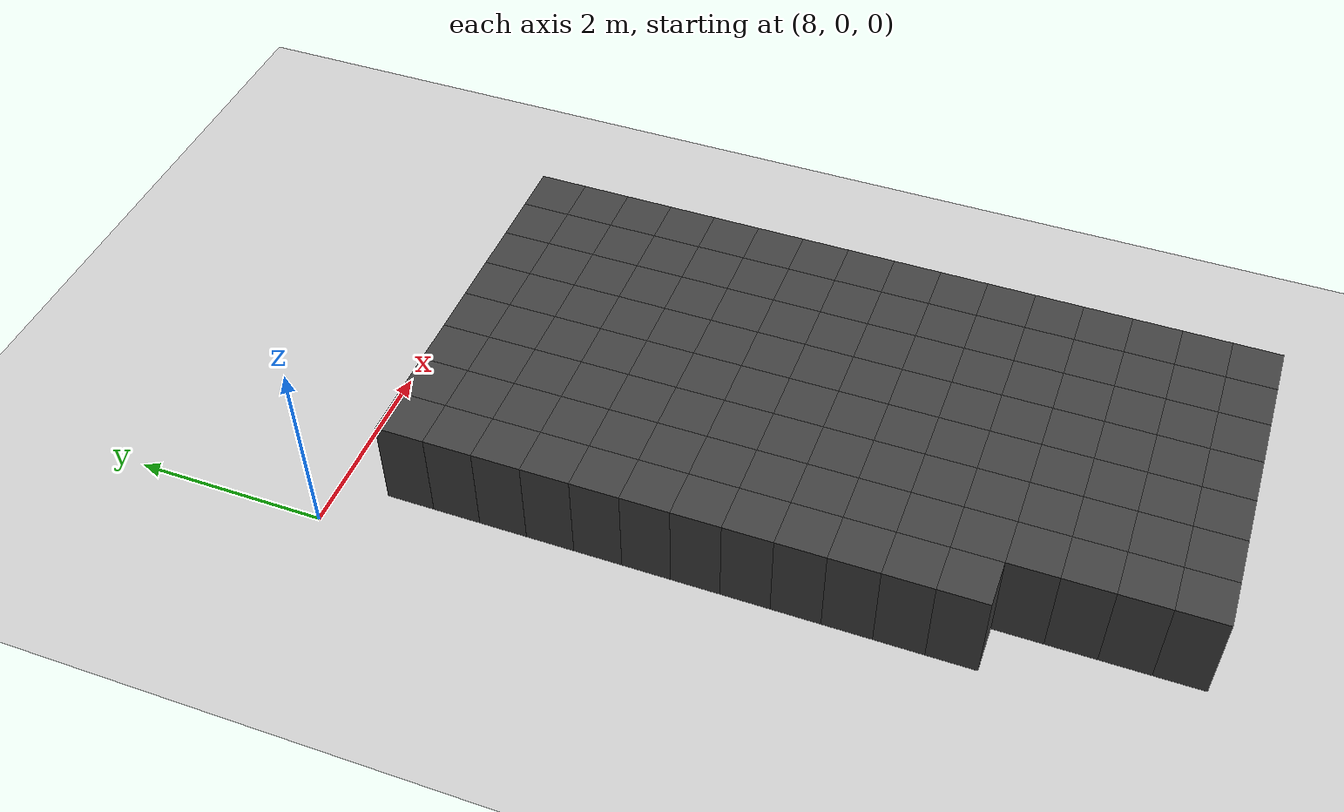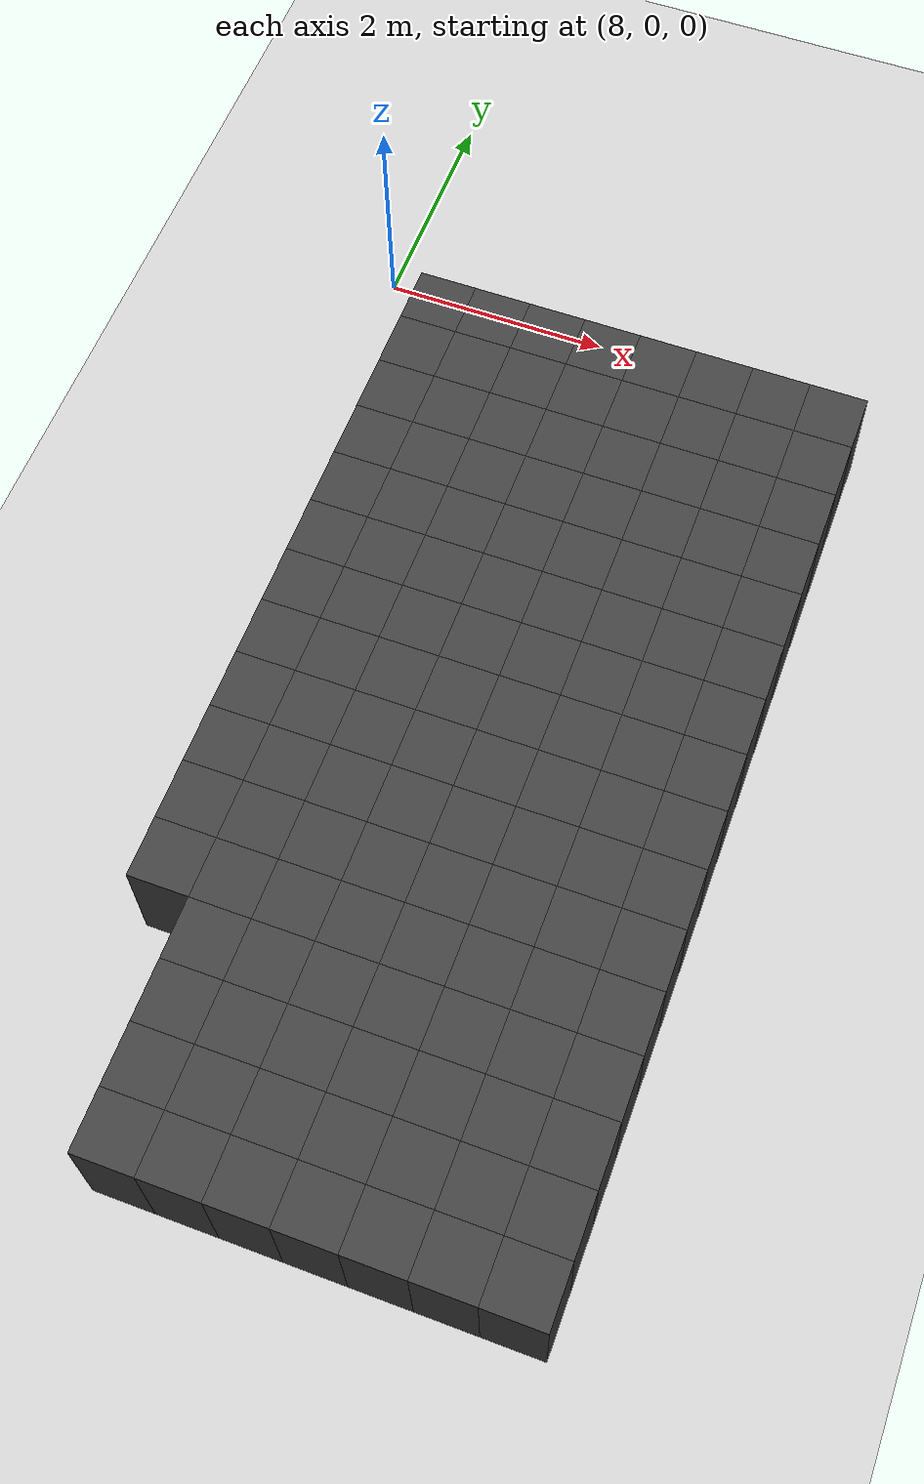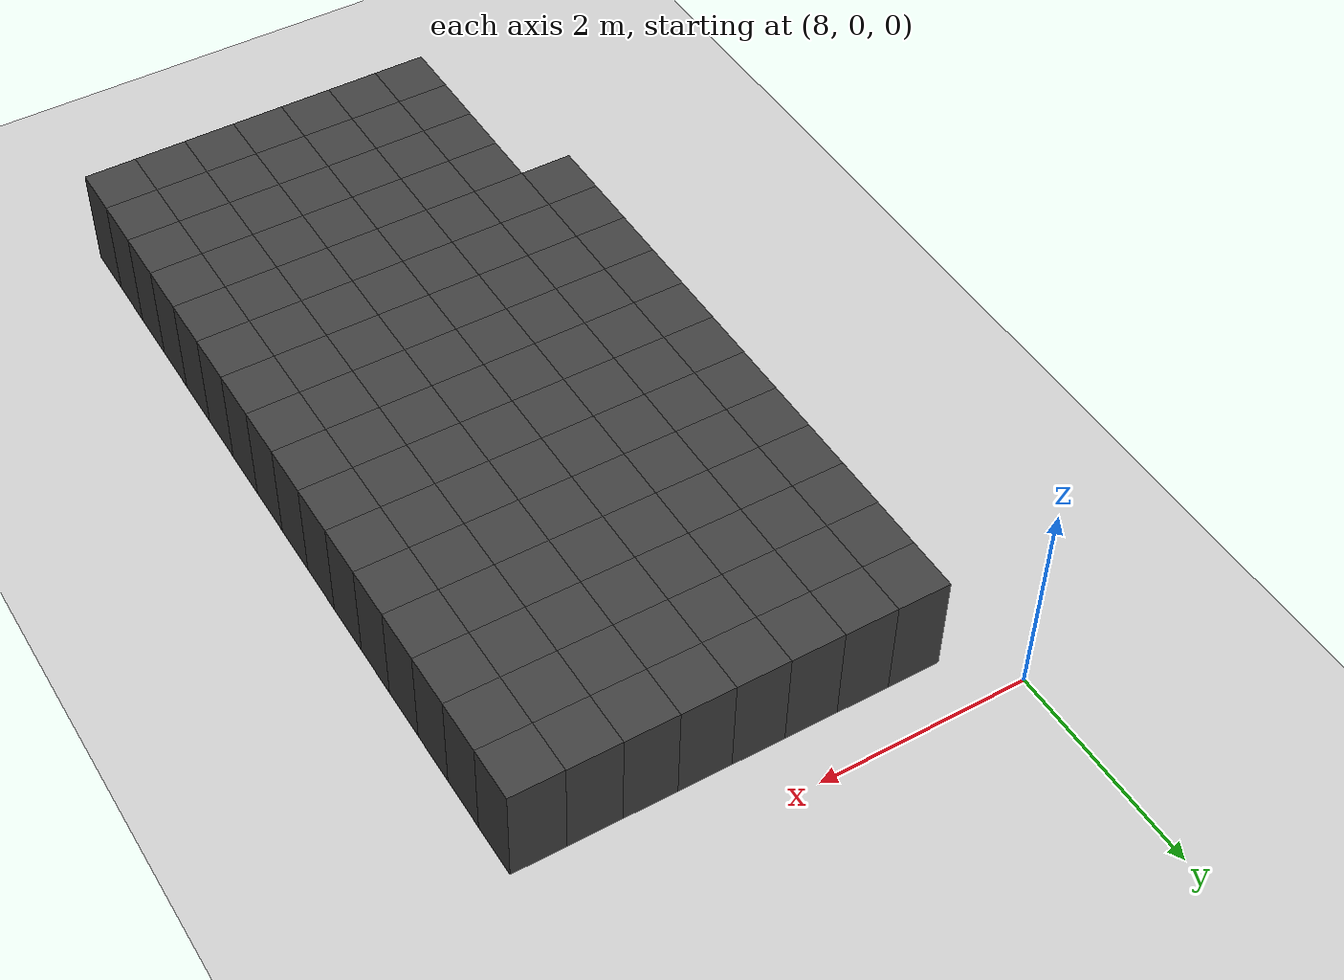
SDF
<sdf version="1.7">
 <world name="map_14668">
  <model name="ground_plane">
   <static>true</static>
   <link name="link">
    <collision name="collision">
     <geometry><plane><normal>0 0 1</normal><size>200 200</size></plane></geometry>
    </collision>
    <visual name="visual">
     <geometry><plane><normal>0 0 1</normal><size>200 200</size></plane></geometry>
     <material><ambient>0.8 0.8 0.8 1</ambient><diffuse>0.8 0.8 0.8 1</diffuse></material>
    </visual>
   </link>
  </model>
  <model name="maze_environment">
   <static>true</static>
   <link name="wall_1041">
    <pose>8.750 -0.750 0.500 0 0 0</pose>
    <collision name="col"><geometry><box><size>0.5 0.5 1.0</size></box></geometry></collision>
    <visual name="vis">
     <geometry><box><size>0.5 0.5 1.0</size></box></geometry>
     <material><ambient>0.15 0.15 0.15 1</ambient><diffuse>0.25 0.25 0.25 1</diffuse></material>
    </visual>
   </link>
   <link name="wall_1042">
    <pose>9.250 -0.750 0.500 0 0 0</pose>
    <collision name="col"><geometry><box><size>0.5 0.5 1.0</size></box></geometry></collision>
    <visual name="vis">
     <geometry><box><size>0.5 0.5 1.0</size></box></geometry>
     <material><ambient>0.15 0.15 0.15 1</ambient><diffuse>0.25 0.25 0.25 1</diffuse></material>
    </visual>
   </link>
   <link name="wall_1043">
    <pose>9.750 -0.750 0.500 0 0 0</pose>
    <collision name="col"><geometry><box><size>0.5 0.5 1.0</size></box></geometry></collision>
    <visual name="vis">
     <geometry><box><size>0.5 0.5 1.0</size></box></geometry>
     <material><ambient>0.15 0.15 0.15 1</ambient><diffuse>0.25 0.25 0.25 1</diffuse></material>
    </visual>
   </link>
   <link name="wall_1044">
    <pose>10.250 -0.750 0.500 0 0 0</pose>
    <collision name="col"><geometry><box><size>0.5 0.5 1.0</size></box></geometry></collision>
    <visual name="vis">
     <geometry><box><size>0.5 0.5 1.0</size></box></geometry>
     <material><ambient>0.15 0.15 0.15 1</ambient><diffuse>0.25 0.25 0.25 1</diffuse></material>
    </visual>
   </link>
   <link name="wall_1045">
    <pose>10.750 -0.750 0.500 0 0 0</pose>
    <collision name="col"><geometry><box><size>0.5 0.5 1.0</size></box></geometry></collision>
    <visual name="vis">
     <geometry><box><size>0.5 0.5 1.0</size></box></geometry>
     <material><ambient>0.15 0.15 0.15 1</ambient><diffuse>0.25 0.25 0.25 1</diffuse></material>
    </visual>
   </link>
   <link name="wall_1046">
    <pose>11.250 -0.750 0.500 0 0 0</pose>
    <collision name="col"><geometry><box><size>0.5 0.5 1.0</size></box></geometry></collision>
    <visual name="vis">
     <geometry><box><size>0.5 0.5 1.0</size></box></geometry>
     <material><ambient>0.15 0.15 0.15 1</ambient><diffuse>0.25 0.25 0.25 1</diffuse></material>
    </visual>
   </link>
   <link name="wall_1047">
    <pose>11.750 -0.750 0.500 0 0 0</pose>
    <collision name="col"><geometry><box><size>0.5 0.5 1.0</size></box></geometry></collision>
    <visual name="vis">
     <geometry><box><size>0.5 0.5 1.0</size></box></geometry>
     <material><ambient>0.15 0.15 0.15 1</ambient><diffuse>0.25 0.25 0.25 1</diffuse></material>
    </visual>
   </link>
   <link name="wall_1048">
    <pose>12.250 -0.750 0.500 0 0 0</pose>
    <collision name="col"><geometry><box><size>0.5 0.5 1.0</size></box></geometry></collision>
    <visual name="vis">
     <geometry><box><size>0.5 0.5 1.0</size></box></geometry>
     <material><ambient>0.15 0.15 0.15 1</ambient><diffuse>0.25 0.25 0.25 1</diffuse></material>
    </visual>
   </link>
   <link name="wall_1083">
    <pose>8.750 -1.250 0.500 0 0 0</pose>
    <collision name="col"><geometry><box><size>0.5 0.5 1.0</size></box></geometry></collision>
    <visual name="vis">
     <geometry><box><size>0.5 0.5 1.0</size></box></geometry>
     <material><ambient>0.15 0.15 0.15 1</ambient><diffuse>0.25 0.25 0.25 1</diffuse></material>
    </visual>
   </link>
   <link name="wall_1084">
    <pose>9.250 -1.250 0.500 0 0 0</pose>
    <collision name="col"><geometry><box><size>0.5 0.5 1.0</size></box></geometry></collision>
    <visual name="vis">
     <geometry><box><size>0.5 0.5 1.0</size></box></geometry>
     <material><ambient>0.15 0.15 0.15 1</ambient><diffuse>0.25 0.25 0.25 1</diffuse></material>
    </visual>
   </link>
   <link name="wall_1085">
    <pose>9.750 -1.250 0.500 0 0 0</pose>
    <collision name="col"><geometry><box><size>0.5 0.5 1.0</size></box></geometry></collision>
    <visual name="vis">
     <geometry><box><size>0.5 0.5 1.0</size></box></geometry>
     <material><ambient>0.15 0.15 0.15 1</ambient><diffuse>0.25 0.25 0.25 1</diffuse></material>
    </visual>
   </link>
   <link name="wall_1086">
    <pose>10.250 -1.250 0.500 0 0 0</pose>
    <collision name="col"><geometry><box><size>0.5 0.5 1.0</size></box></geometry></collision>
    <visual name="vis">
     <geometry><box><size>0.5 0.5 1.0</size></box></geometry>
     <material><ambient>0.15 0.15 0.15 1</ambient><diffuse>0.25 0.25 0.25 1</diffuse></material>
    </visual>
   </link>
   <link name="wall_1087">
    <pose>10.750 -1.250 0.500 0 0 0</pose>
    <collision name="col"><geometry><box><size>0.5 0.5 1.0</size></box></geometry></collision>
    <visual name="vis">
     <geometry><box><size>0.5 0.5 1.0</size></box></geometry>
     <material><ambient>0.15 0.15 0.15 1</ambient><diffuse>0.25 0.25 0.25 1</diffuse></material>
    </visual>
   </link>
   <link name="wall_1088">
    <pose>11.250 -1.250 0.500 0 0 0</pose>
    <collision name="col"><geometry><box><size>0.5 0.5 1.0</size></box></geometry></collision>
    <visual name="vis">
     <geometry><box><size>0.5 0.5 1.0</size></box></geometry>
     <material><ambient>0.15 0.15 0.15 1</ambient><diffuse>0.25 0.25 0.25 1</diffuse></material>
    </visual>
   </link>
   <link name="wall_1089">
    <pose>11.750 -1.250 0.500 0 0 0</pose>
    <collision name="col"><geometry><box><size>0.5 0.5 1.0</size></box></geometry></collision>
    <visual name="vis">
     <geometry><box><size>0.5 0.5 1.0</size></box></geometry>
     <material><ambient>0.15 0.15 0.15 1</ambient><diffuse>0.25 0.25 0.25 1</diffuse></material>
    </visual>
   </link>
   <link name="wall_1090">
    <pose>12.250 -1.250 0.500 0 0 0</pose>
    <collision name="col"><geometry><box><size>0.5 0.5 1.0</size></box></geometry></collision>
    <visual name="vis">
     <geometry><box><size>0.5 0.5 1.0</size></box></geometry>
     <material><ambient>0.15 0.15 0.15 1</ambient><diffuse>0.25 0.25 0.25 1</diffuse></material>
    </visual>
   </link>
   <link name="wall_1119">
    <pose>8.750 -1.750 0.500 0 0 0</pose>
    <collision name="col"><geometry><box><size>0.5 0.5 1.0</size></box></geometry></collision>
    <visual name="vis">
     <geometry><box><size>0.5 0.5 1.0</size></box></geometry>
     <material><ambient>0.15 0.15 0.15 1</ambient><diffuse>0.25 0.25 0.25 1</diffuse></material>
    </visual>
   </link>
   <link name="wall_1120">
    <pose>9.250 -1.750 0.500 0 0 0</pose>
    <collision name="col"><geometry><box><size>0.5 0.5 1.0</size></box></geometry></collision>
    <visual name="vis">
     <geometry><box><size>0.5 0.5 1.0</size></box></geometry>
     <material><ambient>0.15 0.15 0.15 1</ambient><diffuse>0.25 0.25 0.25 1</diffuse></material>
    </visual>
   </link>
   <link name="wall_1121">
    <pose>9.750 -1.750 0.500 0 0 0</pose>
    <collision name="col"><geometry><box><size>0.5 0.5 1.0</size></box></geometry></collision>
    <visual name="vis">
     <geometry><box><size>0.5 0.5 1.0</size></box></geometry>
     <material><ambient>0.15 0.15 0.15 1</ambient><diffuse>0.25 0.25 0.25 1</diffuse></material>
    </visual>
   </link>
   <link name="wall_1122">
    <pose>10.250 -1.750 0.500 0 0 0</pose>
    <collision name="col"><geometry><box><size>0.5 0.5 1.0</size></box></geometry></collision>
    <visual name="vis">
     <geometry><box><size>0.5 0.5 1.0</size></box></geometry>
     <material><ambient>0.15 0.15 0.15 1</ambient><diffuse>0.25 0.25 0.25 1</diffuse></material>
    </visual>
   </link>
   <link name="wall_1123">
    <pose>10.750 -1.750 0.500 0 0 0</pose>
    <collision name="col"><geometry><box><size>0.5 0.5 1.0</size></box></geometry></collision>
    <visual name="vis">
     <geometry><box><size>0.5 0.5 1.0</size></box></geometry>
     <material><ambient>0.15 0.15 0.15 1</ambient><diffuse>0.25 0.25 0.25 1</diffuse></material>
    </visual>
   </link>
   <link name="wall_1124">
    <pose>11.250 -1.750 0.500 0 0 0</pose>
    <collision name="col"><geometry><box><size>0.5 0.5 1.0</size></box></geometry></collision>
    <visual name="vis">
     <geometry><box><size>0.5 0.5 1.0</size></box></geometry>
     <material><ambient>0.15 0.15 0.15 1</ambient><diffuse>0.25 0.25 0.25 1</diffuse></material>
    </visual>
   </link>
   <link name="wall_1125">
    <pose>11.750 -1.750 0.500 0 0 0</pose>
    <collision name="col"><geometry><box><size>0.5 0.5 1.0</size></box></geometry></collision>
    <visual name="vis">
     <geometry><box><size>0.5 0.5 1.0</size></box></geometry>
     <material><ambient>0.15 0.15 0.15 1</ambient><diffuse>0.25 0.25 0.25 1</diffuse></material>
    </visual>
   </link>
   <link name="wall_1126">
    <pose>12.250 -1.750 0.500 0 0 0</pose>
    <collision name="col"><geometry><box><size>0.5 0.5 1.0</size></box></geometry></collision>
    <visual name="vis">
     <geometry><box><size>0.5 0.5 1.0</size></box></geometry>
     <material><ambient>0.15 0.15 0.15 1</ambient><diffuse>0.25 0.25 0.25 1</diffuse></material>
    </visual>
   </link>
   <link name="wall_1149">
    <pose>8.750 -2.250 0.500 0 0 0</pose>
    <collision name="col"><geometry><box><size>0.5 0.5 1.0</size></box></geometry></collision>
    <visual name="vis">
     <geometry><box><size>0.5 0.5 1.0</size></box></geometry>
     <material><ambient>0.15 0.15 0.15 1</ambient><diffuse>0.25 0.25 0.25 1</diffuse></material>
    </visual>
   </link>
   <link name="wall_1150">
    <pose>9.250 -2.250 0.500 0 0 0</pose>
    <collision name="col"><geometry><box><size>0.5 0.5 1.0</size></box></geometry></collision>
    <visual name="vis">
     <geometry><box><size>0.5 0.5 1.0</size></box></geometry>
     <material><ambient>0.15 0.15 0.15 1</ambient><diffuse>0.25 0.25 0.25 1</diffuse></material>
    </visual>
   </link>
   <link name="wall_1151">
    <pose>9.750 -2.250 0.500 0 0 0</pose>
    <collision name="col"><geometry><box><size>0.5 0.5 1.0</size></box></geometry></collision>
    <visual name="vis">
     <geometry><box><size>0.5 0.5 1.0</size></box></geometry>
     <material><ambient>0.15 0.15 0.15 1</ambient><diffuse>0.25 0.25 0.25 1</diffuse></material>
    </visual>
   </link>
   <link name="wall_1152">
    <pose>10.250 -2.250 0.500 0 0 0</pose>
    <collision name="col"><geometry><box><size>0.5 0.5 1.0</size></box></geometry></collision>
    <visual name="vis">
     <geometry><box><size>0.5 0.5 1.0</size></box></geometry>
     <material><ambient>0.15 0.15 0.15 1</ambient><diffuse>0.25 0.25 0.25 1</diffuse></material>
    </visual>
   </link>
   <link name="wall_1153">
    <pose>10.750 -2.250 0.500 0 0 0</pose>
    <collision name="col"><geometry><box><size>0.5 0.5 1.0</size></box></geometry></collision>
    <visual name="vis">
     <geometry><box><size>0.5 0.5 1.0</size></box></geometry>
     <material><ambient>0.15 0.15 0.15 1</ambient><diffuse>0.25 0.25 0.25 1</diffuse></material>
    </visual>
   </link>
   <link name="wall_1154">
    <pose>11.250 -2.250 0.500 0 0 0</pose>
    <collision name="col"><geometry><box><size>0.5 0.5 1.0</size></box></geometry></collision>
    <visual name="vis">
     <geometry><box><size>0.5 0.5 1.0</size></box></geometry>
     <material><ambient>0.15 0.15 0.15 1</ambient><diffuse>0.25 0.25 0.25 1</diffuse></material>
    </visual>
   </link>
   <link name="wall_1155">
    <pose>11.750 -2.250 0.500 0 0 0</pose>
    <collision name="col"><geometry><box><size>0.5 0.5 1.0</size></box></geometry></collision>
    <visual name="vis">
     <geometry><box><size>0.5 0.5 1.0</size></box></geometry>
     <material><ambient>0.15 0.15 0.15 1</ambient><diffuse>0.25 0.25 0.25 1</diffuse></material>
    </visual>
   </link>
   <link name="wall_1156">
    <pose>12.250 -2.250 0.500 0 0 0</pose>
    <collision name="col"><geometry><box><size>0.5 0.5 1.0</size></box></geometry></collision>
    <visual name="vis">
     <geometry><box><size>0.5 0.5 1.0</size></box></geometry>
     <material><ambient>0.15 0.15 0.15 1</ambient><diffuse>0.25 0.25 0.25 1</diffuse></material>
    </visual>
   </link>
   <link name="wall_1172">
    <pose>8.750 -2.750 0.500 0 0 0</pose>
    <collision name="col"><geometry><box><size>0.5 0.5 1.0</size></box></geometry></collision>
    <visual name="vis">
     <geometry><box><size>0.5 0.5 1.0</size></box></geometry>
     <material><ambient>0.15 0.15 0.15 1</ambient><diffuse>0.25 0.25 0.25 1</diffuse></material>
    </visual>
   </link>
   <link name="wall_1173">
    <pose>9.250 -2.750 0.500 0 0 0</pose>
    <collision name="col"><geometry><box><size>0.5 0.5 1.0</size></box></geometry></collision>
    <visual name="vis">
     <geometry><box><size>0.5 0.5 1.0</size></box></geometry>
     <material><ambient>0.15 0.15 0.15 1</ambient><diffuse>0.25 0.25 0.25 1</diffuse></material>
    </visual>
   </link>
   <link name="wall_1174">
    <pose>9.750 -2.750 0.500 0 0 0</pose>
    <collision name="col"><geometry><box><size>0.5 0.5 1.0</size></box></geometry></collision>
    <visual name="vis">
     <geometry><box><size>0.5 0.5 1.0</size></box></geometry>
     <material><ambient>0.15 0.15 0.15 1</ambient><diffuse>0.25 0.25 0.25 1</diffuse></material>
    </visual>
   </link>
   <link name="wall_1175">
    <pose>10.250 -2.750 0.500 0 0 0</pose>
    <collision name="col"><geometry><box><size>0.5 0.5 1.0</size></box></geometry></collision>
    <visual name="vis">
     <geometry><box><size>0.5 0.5 1.0</size></box></geometry>
     <material><ambient>0.15 0.15 0.15 1</ambient><diffuse>0.25 0.25 0.25 1</diffuse></material>
    </visual>
   </link>
   <link name="wall_1176">
    <pose>10.750 -2.750 0.500 0 0 0</pose>
    <collision name="col"><geometry><box><size>0.5 0.5 1.0</size></box></geometry></collision>
    <visual name="vis">
     <geometry><box><size>0.5 0.5 1.0</size></box></geometry>
     <material><ambient>0.15 0.15 0.15 1</ambient><diffuse>0.25 0.25 0.25 1</diffuse></material>
    </visual>
   </link>
   <link name="wall_1177">
    <pose>11.250 -2.750 0.500 0 0 0</pose>
    <collision name="col"><geometry><box><size>0.5 0.5 1.0</size></box></geometry></collision>
    <visual name="vis">
     <geometry><box><size>0.5 0.5 1.0</size></box></geometry>
     <material><ambient>0.15 0.15 0.15 1</ambient><diffuse>0.25 0.25 0.25 1</diffuse></material>
    </visual>
   </link>
   <link name="wall_1178">
    <pose>11.750 -2.750 0.500 0 0 0</pose>
    <collision name="col"><geometry><box><size>0.5 0.5 1.0</size></box></geometry></collision>
    <visual name="vis">
     <geometry><box><size>0.5 0.5 1.0</size></box></geometry>
     <material><ambient>0.15 0.15 0.15 1</ambient><diffuse>0.25 0.25 0.25 1</diffuse></material>
    </visual>
   </link>
   <link name="wall_1179">
    <pose>12.250 -2.750 0.500 0 0 0</pose>
    <collision name="col"><geometry><box><size>0.5 0.5 1.0</size></box></geometry></collision>
    <visual name="vis">
     <geometry><box><size>0.5 0.5 1.0</size></box></geometry>
     <material><ambient>0.15 0.15 0.15 1</ambient><diffuse>0.25 0.25 0.25 1</diffuse></material>
    </visual>
   </link>
   <link name="wall_1193">
    <pose>8.750 -3.250 0.500 0 0 0</pose>
    <collision name="col"><geometry><box><size>0.5 0.5 1.0</size></box></geometry></collision>
    <visual name="vis">
     <geometry><box><size>0.5 0.5 1.0</size></box></geometry>
     <material><ambient>0.15 0.15 0.15 1</ambient><diffuse>0.25 0.25 0.25 1</diffuse></material>
    </visual>
   </link>
   <link name="wall_1194">
    <pose>9.250 -3.250 0.500 0 0 0</pose>
    <collision name="col"><geometry><box><size>0.5 0.5 1.0</size></box></geometry></collision>
    <visual name="vis">
     <geometry><box><size>0.5 0.5 1.0</size></box></geometry>
     <material><ambient>0.15 0.15 0.15 1</ambient><diffuse>0.25 0.25 0.25 1</diffuse></material>
    </visual>
   </link>
   <link name="wall_1195">
    <pose>9.750 -3.250 0.500 0 0 0</pose>
    <collision name="col"><geometry><box><size>0.5 0.5 1.0</size></box></geometry></collision>
    <visual name="vis">
     <geometry><box><size>0.5 0.5 1.0</size></box></geometry>
     <material><ambient>0.15 0.15 0.15 1</ambient><diffuse>0.25 0.25 0.25 1</diffuse></material>
    </visual>
   </link>
   <link name="wall_1196">
    <pose>10.250 -3.250 0.500 0 0 0</pose>
    <collision name="col"><geometry><box><size>0.5 0.5 1.0</size></box></geometry></collision>
    <visual name="vis">
     <geometry><box><size>0.5 0.5 1.0</size></box></geometry>
     <material><ambient>0.15 0.15 0.15 1</ambient><diffuse>0.25 0.25 0.25 1</diffuse></material>
    </visual>
   </link>
   <link name="wall_1197">
    <pose>10.750 -3.250 0.500 0 0 0</pose>
    <collision name="col"><geometry><box><size>0.5 0.5 1.0</size></box></geometry></collision>
    <visual name="vis">
     <geometry><box><size>0.5 0.5 1.0</size></box></geometry>
     <material><ambient>0.15 0.15 0.15 1</ambient><diffuse>0.25 0.25 0.25 1</diffuse></material>
    </visual>
   </link>
   <link name="wall_1198">
    <pose>11.250 -3.250 0.500 0 0 0</pose>
    <collision name="col"><geometry><box><size>0.5 0.5 1.0</size></box></geometry></collision>
    <visual name="vis">
     <geometry><box><size>0.5 0.5 1.0</size></box></geometry>
     <material><ambient>0.15 0.15 0.15 1</ambient><diffuse>0.25 0.25 0.25 1</diffuse></material>
    </visual>
   </link>
   <link name="wall_1199">
    <pose>11.750 -3.250 0.500 0 0 0</pose>
    <collision name="col"><geometry><box><size>0.5 0.5 1.0</size></box></geometry></collision>
    <visual name="vis">
     <geometry><box><size>0.5 0.5 1.0</size></box></geometry>
     <material><ambient>0.15 0.15 0.15 1</ambient><diffuse>0.25 0.25 0.25 1</diffuse></material>
    </visual>
   </link>
   <link name="wall_1200">
    <pose>12.250 -3.250 0.500 0 0 0</pose>
    <collision name="col"><geometry><box><size>0.5 0.5 1.0</size></box></geometry></collision>
    <visual name="vis">
     <geometry><box><size>0.5 0.5 1.0</size></box></geometry>
     <material><ambient>0.15 0.15 0.15 1</ambient><diffuse>0.25 0.25 0.25 1</diffuse></material>
    </visual>
   </link>
   <link name="wall_1214">
    <pose>8.750 -3.750 0.500 0 0 0</pose>
    <collision name="col"><geometry><box><size>0.5 0.5 1.0</size></box></geometry></collision>
    <visual name="vis">
     <geometry><box><size>0.5 0.5 1.0</size></box></geometry>
     <material><ambient>0.15 0.15 0.15 1</ambient><diffuse>0.25 0.25 0.25 1</diffuse></material>
    </visual>
   </link>
   <link name="wall_1215">
    <pose>9.250 -3.750 0.500 0 0 0</pose>
    <collision name="col"><geometry><box><size>0.5 0.5 1.0</size></box></geometry></collision>
    <visual name="vis">
     <geometry><box><size>0.5 0.5 1.0</size></box></geometry>
     <material><ambient>0.15 0.15 0.15 1</ambient><diffuse>0.25 0.25 0.25 1</diffuse></material>
    </visual>
   </link>
   <link name="wall_1216">
    <pose>9.750 -3.750 0.500 0 0 0</pose>
    <collision name="col"><geometry><box><size>0.5 0.5 1.0</size></box></geometry></collision>
    <visual name="vis">
     <geometry><box><size>0.5 0.5 1.0</size></box></geometry>
     <material><ambient>0.15 0.15 0.15 1</ambient><diffuse>0.25 0.25 0.25 1</diffuse></material>
    </visual>
   </link>
   <link name="wall_1217">
    <pose>10.250 -3.750 0.500 0 0 0</pose>
    <collision name="col"><geometry><box><size>0.5 0.5 1.0</size></box></geometry></collision>
    <visual name="vis">
     <geometry><box><size>0.5 0.5 1.0</size></box></geometry>
     <material><ambient>0.15 0.15 0.15 1</ambient><diffuse>0.25 0.25 0.25 1</diffuse></material>
    </visual>
   </link>
   <link name="wall_1218">
    <pose>10.750 -3.750 0.500 0 0 0</pose>
    <collision name="col"><geometry><box><size>0.5 0.5 1.0</size></box></geometry></collision>
    <visual name="vis">
     <geometry><box><size>0.5 0.5 1.0</size></box></geometry>
     <material><ambient>0.15 0.15 0.15 1</ambient><diffuse>0.25 0.25 0.25 1</diffuse></material>
    </visual>
   </link>
   <link name="wall_1219">
    <pose>11.250 -3.750 0.500 0 0 0</pose>
    <collision name="col"><geometry><box><size>0.5 0.5 1.0</size></box></geometry></collision>
    <visual name="vis">
     <geometry><box><size>0.5 0.5 1.0</size></box></geometry>
     <material><ambient>0.15 0.15 0.15 1</ambient><diffuse>0.25 0.25 0.25 1</diffuse></material>
    </visual>
   </link>
   <link name="wall_1220">
    <pose>11.750 -3.750 0.500 0 0 0</pose>
    <collision name="col"><geometry><box><size>0.5 0.5 1.0</size></box></geometry></collision>
    <visual name="vis">
     <geometry><box><size>0.5 0.5 1.0</size></box></geometry>
     <material><ambient>0.15 0.15 0.15 1</ambient><diffuse>0.25 0.25 0.25 1</diffuse></material>
    </visual>
   </link>
   <link name="wall_1221">
    <pose>12.250 -3.750 0.500 0 0 0</pose>
    <collision name="col"><geometry><box><size>0.5 0.5 1.0</size></box></geometry></collision>
    <visual name="vis">
     <geometry><box><size>0.5 0.5 1.0</size></box></geometry>
     <material><ambient>0.15 0.15 0.15 1</ambient><diffuse>0.25 0.25 0.25 1</diffuse></material>
    </visual>
   </link>
   <link name="wall_1233">
    <pose>8.750 -4.250 0.500 0 0 0</pose>
    <collision name="col"><geometry><box><size>0.5 0.5 1.0</size></box></geometry></collision>
    <visual name="vis">
     <geometry><box><size>0.5 0.5 1.0</size></box></geometry>
     <material><ambient>0.15 0.15 0.15 1</ambient><diffuse>0.25 0.25 0.25 1</diffuse></material>
    </visual>
   </link>
   <link name="wall_1234">
    <pose>9.250 -4.250 0.500 0 0 0</pose>
    <collision name="col"><geometry><box><size>0.5 0.5 1.0</size></box></geometry></collision>
    <visual name="vis">
     <geometry><box><size>0.5 0.5 1.0</size></box></geometry>
     <material><ambient>0.15 0.15 0.15 1</ambient><diffuse>0.25 0.25 0.25 1</diffuse></material>
    </visual>
   </link>
   <link name="wall_1235">
    <pose>9.750 -4.250 0.500 0 0 0</pose>
    <collision name="col"><geometry><box><size>0.5 0.5 1.0</size></box></geometry></collision>
    <visual name="vis">
     <geometry><box><size>0.5 0.5 1.0</size></box></geometry>
     <material><ambient>0.15 0.15 0.15 1</ambient><diffuse>0.25 0.25 0.25 1</diffuse></material>
    </visual>
   </link>
   <link name="wall_1236">
    <pose>10.250 -4.250 0.500 0 0 0</pose>
    <collision name="col"><geometry><box><size>0.5 0.5 1.0</size></box></geometry></collision>
    <visual name="vis">
     <geometry><box><size>0.5 0.5 1.0</size></box></geometry>
     <material><ambient>0.15 0.15 0.15 1</ambient><diffuse>0.25 0.25 0.25 1</diffuse></material>
    </visual>
   </link>
   <link name="wall_1237">
    <pose>10.750 -4.250 0.500 0 0 0</pose>
    <collision name="col"><geometry><box><size>0.5 0.5 1.0</size></box></geometry></collision>
    <visual name="vis">
     <geometry><box><size>0.5 0.5 1.0</size></box></geometry>
     <material><ambient>0.15 0.15 0.15 1</ambient><diffuse>0.25 0.25 0.25 1</diffuse></material>
    </visual>
   </link>
   <link name="wall_1238">
    <pose>11.250 -4.250 0.500 0 0 0</pose>
    <collision name="col"><geometry><box><size>0.5 0.5 1.0</size></box></geometry></collision>
    <visual name="vis">
     <geometry><box><size>0.5 0.5 1.0</size></box></geometry>
     <material><ambient>0.15 0.15 0.15 1</ambient><diffuse>0.25 0.25 0.25 1</diffuse></material>
    </visual>
   </link>
   <link name="wall_1239">
    <pose>11.750 -4.250 0.500 0 0 0</pose>
    <collision name="col"><geometry><box><size>0.5 0.5 1.0</size></box></geometry></collision>
    <visual name="vis">
     <geometry><box><size>0.5 0.5 1.0</size></box></geometry>
     <material><ambient>0.15 0.15 0.15 1</ambient><diffuse>0.25 0.25 0.25 1</diffuse></material>
    </visual>
   </link>
   <link name="wall_1240">
    <pose>12.250 -4.250 0.500 0 0 0</pose>
    <collision name="col"><geometry><box><size>0.5 0.5 1.0</size></box></geometry></collision>
    <visual name="vis">
     <geometry><box><size>0.5 0.5 1.0</size></box></geometry>
     <material><ambient>0.15 0.15 0.15 1</ambient><diffuse>0.25 0.25 0.25 1</diffuse></material>
    </visual>
   </link>
   <link name="wall_1250">
    <pose>8.750 -4.750 0.500 0 0 0</pose>
    <collision name="col"><geometry><box><size>0.5 0.5 1.0</size></box></geometry></collision>
    <visual name="vis">
     <geometry><box><size>0.5 0.5 1.0</size></box></geometry>
     <material><ambient>0.15 0.15 0.15 1</ambient><diffuse>0.25 0.25 0.25 1</diffuse></material>
    </visual>
   </link>
   <link name="wall_1251">
    <pose>9.250 -4.750 0.500 0 0 0</pose>
    <collision name="col"><geometry><box><size>0.5 0.5 1.0</size></box></geometry></collision>
    <visual name="vis">
     <geometry><box><size>0.5 0.5 1.0</size></box></geometry>
     <material><ambient>0.15 0.15 0.15 1</ambient><diffuse>0.25 0.25 0.25 1</diffuse></material>
    </visual>
   </link>
   <link name="wall_1252">
    <pose>9.750 -4.750 0.500 0 0 0</pose>
    <collision name="col"><geometry><box><size>0.5 0.5 1.0</size></box></geometry></collision>
    <visual name="vis">
     <geometry><box><size>0.5 0.5 1.0</size></box></geometry>
     <material><ambient>0.15 0.15 0.15 1</ambient><diffuse>0.25 0.25 0.25 1</diffuse></material>
    </visual>
   </link>
   <link name="wall_1253">
    <pose>10.250 -4.750 0.500 0 0 0</pose>
    <collision name="col"><geometry><box><size>0.5 0.5 1.0</size></box></geometry></collision>
    <visual name="vis">
     <geometry><box><size>0.5 0.5 1.0</size></box></geometry>
     <material><ambient>0.15 0.15 0.15 1</ambient><diffuse>0.25 0.25 0.25 1</diffuse></material>
    </visual>
   </link>
   <link name="wall_1254">
    <pose>10.750 -4.750 0.500 0 0 0</pose>
    <collision name="col"><geometry><box><size>0.5 0.5 1.0</size></box></geometry></collision>
    <visual name="vis">
     <geometry><box><size>0.5 0.5 1.0</size></box></geometry>
     <material><ambient>0.15 0.15 0.15 1</ambient><diffuse>0.25 0.25 0.25 1</diffuse></material>
    </visual>
   </link>
   <link name="wall_1255">
    <pose>11.250 -4.750 0.500 0 0 0</pose>
    <collision name="col"><geometry><box><size>0.5 0.5 1.0</size></box></geometry></collision>
    <visual name="vis">
     <geometry><box><size>0.5 0.5 1.0</size></box></geometry>
     <material><ambient>0.15 0.15 0.15 1</ambient><diffuse>0.25 0.25 0.25 1</diffuse></material>
    </visual>
   </link>
   <link name="wall_1256">
    <pose>11.750 -4.750 0.500 0 0 0</pose>
    <collision name="col"><geometry><box><size>0.5 0.5 1.0</size></box></geometry></collision>
    <visual name="vis">
     <geometry><box><size>0.5 0.5 1.0</size></box></geometry>
     <material><ambient>0.15 0.15 0.15 1</ambient><diffuse>0.25 0.25 0.25 1</diffuse></material>
    </visual>
   </link>
   <link name="wall_1257">
    <pose>12.250 -4.750 0.500 0 0 0</pose>
    <collision name="col"><geometry><box><size>0.5 0.5 1.0</size></box></geometry></collision>
    <visual name="vis">
     <geometry><box><size>0.5 0.5 1.0</size></box></geometry>
     <material><ambient>0.15 0.15 0.15 1</ambient><diffuse>0.25 0.25 0.25 1</diffuse></material>
    </visual>
   </link>
   <link name="wall_1272">
    <pose>8.750 -5.250 0.500 0 0 0</pose>
    <collision name="col"><geometry><box><size>0.5 0.5 1.0</size></box></geometry></collision>
    <visual name="vis">
     <geometry><box><size>0.5 0.5 1.0</size></box></geometry>
     <material><ambient>0.15 0.15 0.15 1</ambient><diffuse>0.25 0.25 0.25 1</diffuse></material>
    </visual>
   </link>
   <link name="wall_1273">
    <pose>9.250 -5.250 0.500 0 0 0</pose>
    <collision name="col"><geometry><box><size>0.5 0.5 1.0</size></box></geometry></collision>
    <visual name="vis">
     <geometry><box><size>0.5 0.5 1.0</size></box></geometry>
     <material><ambient>0.15 0.15 0.15 1</ambient><diffuse>0.25 0.25 0.25 1</diffuse></material>
    </visual>
   </link>
   <link name="wall_1274">
    <pose>9.750 -5.250 0.500 0 0 0</pose>
    <collision name="col"><geometry><box><size>0.5 0.5 1.0</size></box></geometry></collision>
    <visual name="vis">
     <geometry><box><size>0.5 0.5 1.0</size></box></geometry>
     <material><ambient>0.15 0.15 0.15 1</ambient><diffuse>0.25 0.25 0.25 1</diffuse></material>
    </visual>
   </link>
   <link name="wall_1275">
    <pose>10.250 -5.250 0.500 0 0 0</pose>
    <collision name="col"><geometry><box><size>0.5 0.5 1.0</size></box></geometry></collision>
    <visual name="vis">
     <geometry><box><size>0.5 0.5 1.0</size></box></geometry>
     <material><ambient>0.15 0.15 0.15 1</ambient><diffuse>0.25 0.25 0.25 1</diffuse></material>
    </visual>
   </link>
   <link name="wall_1276">
    <pose>10.750 -5.250 0.500 0 0 0</pose>
    <collision name="col"><geometry><box><size>0.5 0.5 1.0</size></box></geometry></collision>
    <visual name="vis">
     <geometry><box><size>0.5 0.5 1.0</size></box></geometry>
     <material><ambient>0.15 0.15 0.15 1</ambient><diffuse>0.25 0.25 0.25 1</diffuse></material>
    </visual>
   </link>
   <link name="wall_1277">
    <pose>11.250 -5.250 0.500 0 0 0</pose>
    <collision name="col"><geometry><box><size>0.5 0.5 1.0</size></box></geometry></collision>
    <visual name="vis">
     <geometry><box><size>0.5 0.5 1.0</size></box></geometry>
     <material><ambient>0.15 0.15 0.15 1</ambient><diffuse>0.25 0.25 0.25 1</diffuse></material>
    </visual>
   </link>
   <link name="wall_1278">
    <pose>11.750 -5.250 0.500 0 0 0</pose>
    <collision name="col"><geometry><box><size>0.5 0.5 1.0</size></box></geometry></collision>
    <visual name="vis">
     <geometry><box><size>0.5 0.5 1.0</size></box></geometry>
     <material><ambient>0.15 0.15 0.15 1</ambient><diffuse>0.25 0.25 0.25 1</diffuse></material>
    </visual>
   </link>
   <link name="wall_1279">
    <pose>12.250 -5.250 0.500 0 0 0</pose>
    <collision name="col"><geometry><box><size>0.5 0.5 1.0</size></box></geometry></collision>
    <visual name="vis">
     <geometry><box><size>0.5 0.5 1.0</size></box></geometry>
     <material><ambient>0.15 0.15 0.15 1</ambient><diffuse>0.25 0.25 0.25 1</diffuse></material>
    </visual>
   </link>
   <link name="wall_1300">
    <pose>8.750 -5.750 0.500 0 0 0</pose>
    <collision name="col"><geometry><box><size>0.5 0.5 1.0</size></box></geometry></collision>
    <visual name="vis">
     <geometry><box><size>0.5 0.5 1.0</size></box></geometry>
     <material><ambient>0.15 0.15 0.15 1</ambient><diffuse>0.25 0.25 0.25 1</diffuse></material>
    </visual>
   </link>
   <link name="wall_1301">
    <pose>9.250 -5.750 0.500 0 0 0</pose>
    <collision name="col"><geometry><box><size>0.5 0.5 1.0</size></box></geometry></collision>
    <visual name="vis">
     <geometry><box><size>0.5 0.5 1.0</size></box></geometry>
     <material><ambient>0.15 0.15 0.15 1</ambient><diffuse>0.25 0.25 0.25 1</diffuse></material>
    </visual>
   </link>
   <link name="wall_1302">
    <pose>9.750 -5.750 0.500 0 0 0</pose>
    <collision name="col"><geometry><box><size>0.5 0.5 1.0</size></box></geometry></collision>
    <visual name="vis">
     <geometry><box><size>0.5 0.5 1.0</size></box></geometry>
     <material><ambient>0.15 0.15 0.15 1</ambient><diffuse>0.25 0.25 0.25 1</diffuse></material>
    </visual>
   </link>
   <link name="wall_1303">
    <pose>10.250 -5.750 0.500 0 0 0</pose>
    <collision name="col"><geometry><box><size>0.5 0.5 1.0</size></box></geometry></collision>
    <visual name="vis">
     <geometry><box><size>0.5 0.5 1.0</size></box></geometry>
     <material><ambient>0.15 0.15 0.15 1</ambient><diffuse>0.25 0.25 0.25 1</diffuse></material>
    </visual>
   </link>
   <link name="wall_1304">
    <pose>10.750 -5.750 0.500 0 0 0</pose>
    <collision name="col"><geometry><box><size>0.5 0.5 1.0</size></box></geometry></collision>
    <visual name="vis">
     <geometry><box><size>0.5 0.5 1.0</size></box></geometry>
     <material><ambient>0.15 0.15 0.15 1</ambient><diffuse>0.25 0.25 0.25 1</diffuse></material>
    </visual>
   </link>
   <link name="wall_1305">
    <pose>11.250 -5.750 0.500 0 0 0</pose>
    <collision name="col"><geometry><box><size>0.5 0.5 1.0</size></box></geometry></collision>
    <visual name="vis">
     <geometry><box><size>0.5 0.5 1.0</size></box></geometry>
     <material><ambient>0.15 0.15 0.15 1</ambient><diffuse>0.25 0.25 0.25 1</diffuse></material>
    </visual>
   </link>
   <link name="wall_1306">
    <pose>11.750 -5.750 0.500 0 0 0</pose>
    <collision name="col"><geometry><box><size>0.5 0.5 1.0</size></box></geometry></collision>
    <visual name="vis">
     <geometry><box><size>0.5 0.5 1.0</size></box></geometry>
     <material><ambient>0.15 0.15 0.15 1</ambient><diffuse>0.25 0.25 0.25 1</diffuse></material>
    </visual>
   </link>
   <link name="wall_1307">
    <pose>12.250 -5.750 0.500 0 0 0</pose>
    <collision name="col"><geometry><box><size>0.5 0.5 1.0</size></box></geometry></collision>
    <visual name="vis">
     <geometry><box><size>0.5 0.5 1.0</size></box></geometry>
     <material><ambient>0.15 0.15 0.15 1</ambient><diffuse>0.25 0.25 0.25 1</diffuse></material>
    </visual>
   </link>
   <link name="wall_1327">
    <pose>8.750 -6.250 0.500 0 0 0</pose>
    <collision name="col"><geometry><box><size>0.5 0.5 1.0</size></box></geometry></collision>
    <visual name="vis">
     <geometry><box><size>0.5 0.5 1.0</size></box></geometry>
     <material><ambient>0.15 0.15 0.15 1</ambient><diffuse>0.25 0.25 0.25 1</diffuse></material>
    </visual>
   </link>
   <link name="wall_1328">
    <pose>9.250 -6.250 0.500 0 0 0</pose>
    <collision name="col"><geometry><box><size>0.5 0.5 1.0</size></box></geometry></collision>
    <visual name="vis">
     <geometry><box><size>0.5 0.5 1.0</size></box></geometry>
     <material><ambient>0.15 0.15 0.15 1</ambient><diffuse>0.25 0.25 0.25 1</diffuse></material>
    </visual>
   </link>
   <link name="wall_1329">
    <pose>9.750 -6.250 0.500 0 0 0</pose>
    <collision name="col"><geometry><box><size>0.5 0.5 1.0</size></box></geometry></collision>
    <visual name="vis">
     <geometry><box><size>0.5 0.5 1.0</size></box></geometry>
     <material><ambient>0.15 0.15 0.15 1</ambient><diffuse>0.25 0.25 0.25 1</diffuse></material>
    </visual>
   </link>
   <link name="wall_1330">
    <pose>10.250 -6.250 0.500 0 0 0</pose>
    <collision name="col"><geometry><box><size>0.5 0.5 1.0</size></box></geometry></collision>
    <visual name="vis">
     <geometry><box><size>0.5 0.5 1.0</size></box></geometry>
     <material><ambient>0.15 0.15 0.15 1</ambient><diffuse>0.25 0.25 0.25 1</diffuse></material>
    </visual>
   </link>
   <link name="wall_1331">
    <pose>10.750 -6.250 0.500 0 0 0</pose>
    <collision name="col"><geometry><box><size>0.5 0.5 1.0</size></box></geometry></collision>
    <visual name="vis">
     <geometry><box><size>0.5 0.5 1.0</size></box></geometry>
     <material><ambient>0.15 0.15 0.15 1</ambient><diffuse>0.25 0.25 0.25 1</diffuse></material>
    </visual>
   </link>
   <link name="wall_1332">
    <pose>11.250 -6.250 0.500 0 0 0</pose>
    <collision name="col"><geometry><box><size>0.5 0.5 1.0</size></box></geometry></collision>
    <visual name="vis">
     <geometry><box><size>0.5 0.5 1.0</size></box></geometry>
     <material><ambient>0.15 0.15 0.15 1</ambient><diffuse>0.25 0.25 0.25 1</diffuse></material>
    </visual>
   </link>
   <link name="wall_1333">
    <pose>11.750 -6.250 0.500 0 0 0</pose>
    <collision name="col"><geometry><box><size>0.5 0.5 1.0</size></box></geometry></collision>
    <visual name="vis">
     <geometry><box><size>0.5 0.5 1.0</size></box></geometry>
     <material><ambient>0.15 0.15 0.15 1</ambient><diffuse>0.25 0.25 0.25 1</diffuse></material>
    </visual>
   </link>
   <link name="wall_1334">
    <pose>12.250 -6.250 0.500 0 0 0</pose>
    <collision name="col"><geometry><box><size>0.5 0.5 1.0</size></box></geometry></collision>
    <visual name="vis">
     <geometry><box><size>0.5 0.5 1.0</size></box></geometry>
     <material><ambient>0.15 0.15 0.15 1</ambient><diffuse>0.25 0.25 0.25 1</diffuse></material>
    </visual>
   </link>
   <link name="wall_1358">
    <pose>9.250 -6.750 0.500 0 0 0</pose>
    <collision name="col"><geometry><box><size>0.5 0.5 1.0</size></box></geometry></collision>
    <visual name="vis">
     <geometry><box><size>0.5 0.5 1.0</size></box></geometry>
     <material><ambient>0.15 0.15 0.15 1</ambient><diffuse>0.25 0.25 0.25 1</diffuse></material>
    </visual>
   </link>
   <link name="wall_1359">
    <pose>9.750 -6.750 0.500 0 0 0</pose>
    <collision name="col"><geometry><box><size>0.5 0.5 1.0</size></box></geometry></collision>
    <visual name="vis">
     <geometry><box><size>0.5 0.5 1.0</size></box></geometry>
     <material><ambient>0.15 0.15 0.15 1</ambient><diffuse>0.25 0.25 0.25 1</diffuse></material>
    </visual>
   </link>
   <link name="wall_1360">
    <pose>10.250 -6.750 0.500 0 0 0</pose>
    <collision name="col"><geometry><box><size>0.5 0.5 1.0</size></box></geometry></collision>
    <visual name="vis">
     <geometry><box><size>0.5 0.5 1.0</size></box></geometry>
     <material><ambient>0.15 0.15 0.15 1</ambient><diffuse>0.25 0.25 0.25 1</diffuse></material>
    </visual>
   </link>
   <link name="wall_1361">
    <pose>10.750 -6.750 0.500 0 0 0</pose>
    <collision name="col"><geometry><box><size>0.5 0.5 1.0</size></box></geometry></collision>
    <visual name="vis">
     <geometry><box><size>0.5 0.5 1.0</size></box></geometry>
     <material><ambient>0.15 0.15 0.15 1</ambient><diffuse>0.25 0.25 0.25 1</diffuse></material>
    </visual>
   </link>
   <link name="wall_1362">
    <pose>11.250 -6.750 0.500 0 0 0</pose>
    <collision name="col"><geometry><box><size>0.5 0.5 1.0</size></box></geometry></collision>
    <visual name="vis">
     <geometry><box><size>0.5 0.5 1.0</size></box></geometry>
     <material><ambient>0.15 0.15 0.15 1</ambient><diffuse>0.25 0.25 0.25 1</diffuse></material>
    </visual>
   </link>
   <link name="wall_1363">
    <pose>11.750 -6.750 0.500 0 0 0</pose>
    <collision name="col"><geometry><box><size>0.5 0.5 1.0</size></box></geometry></collision>
    <visual name="vis">
     <geometry><box><size>0.5 0.5 1.0</size></box></geometry>
     <material><ambient>0.15 0.15 0.15 1</ambient><diffuse>0.25 0.25 0.25 1</diffuse></material>
    </visual>
   </link>
   <link name="wall_1364">
    <pose>12.250 -6.750 0.500 0 0 0</pose>
    <collision name="col"><geometry><box><size>0.5 0.5 1.0</size></box></geometry></collision>
    <visual name="vis">
     <geometry><box><size>0.5 0.5 1.0</size></box></geometry>
     <material><ambient>0.15 0.15 0.15 1</ambient><diffuse>0.25 0.25 0.25 1</diffuse></material>
    </visual>
   </link>
   <link name="wall_1383">
    <pose>9.250 -7.250 0.500 0 0 0</pose>
    <collision name="col"><geometry><box><size>0.5 0.5 1.0</size></box></geometry></collision>
    <visual name="vis">
     <geometry><box><size>0.5 0.5 1.0</size></box></geometry>
     <material><ambient>0.15 0.15 0.15 1</ambient><diffuse>0.25 0.25 0.25 1</diffuse></material>
    </visual>
   </link>
   <link name="wall_1384">
    <pose>9.750 -7.250 0.500 0 0 0</pose>
    <collision name="col"><geometry><box><size>0.5 0.5 1.0</size></box></geometry></collision>
    <visual name="vis">
     <geometry><box><size>0.5 0.5 1.0</size></box></geometry>
     <material><ambient>0.15 0.15 0.15 1</ambient><diffuse>0.25 0.25 0.25 1</diffuse></material>
    </visual>
   </link>
   <link name="wall_1385">
    <pose>10.250 -7.250 0.500 0 0 0</pose>
    <collision name="col"><geometry><box><size>0.5 0.5 1.0</size></box></geometry></collision>
    <visual name="vis">
     <geometry><box><size>0.5 0.5 1.0</size></box></geometry>
     <material><ambient>0.15 0.15 0.15 1</ambient><diffuse>0.25 0.25 0.25 1</diffuse></material>
    </visual>
   </link>
   <link name="wall_1386">
    <pose>10.750 -7.250 0.500 0 0 0</pose>
    <collision name="col"><geometry><box><size>0.5 0.5 1.0</size></box></geometry></collision>
    <visual name="vis">
     <geometry><box><size>0.5 0.5 1.0</size></box></geometry>
     <material><ambient>0.15 0.15 0.15 1</ambient><diffuse>0.25 0.25 0.25 1</diffuse></material>
    </visual>
   </link>
   <link name="wall_1387">
    <pose>11.250 -7.250 0.500 0 0 0</pose>
    <collision name="col"><geometry><box><size>0.5 0.5 1.0</size></box></geometry></collision>
    <visual name="vis">
     <geometry><box><size>0.5 0.5 1.0</size></box></geometry>
     <material><ambient>0.15 0.15 0.15 1</ambient><diffuse>0.25 0.25 0.25 1</diffuse></material>
    </visual>
   </link>
   <link name="wall_1388">
    <pose>11.750 -7.250 0.500 0 0 0</pose>
    <collision name="col"><geometry><box><size>0.5 0.5 1.0</size></box></geometry></collision>
    <visual name="vis">
     <geometry><box><size>0.5 0.5 1.0</size></box></geometry>
     <material><ambient>0.15 0.15 0.15 1</ambient><diffuse>0.25 0.25 0.25 1</diffuse></material>
    </visual>
   </link>
   <link name="wall_1389">
    <pose>12.250 -7.250 0.500 0 0 0</pose>
    <collision name="col"><geometry><box><size>0.5 0.5 1.0</size></box></geometry></collision>
    <visual name="vis">
     <geometry><box><size>0.5 0.5 1.0</size></box></geometry>
     <material><ambient>0.15 0.15 0.15 1</ambient><diffuse>0.25 0.25 0.25 1</diffuse></material>
    </visual>
   </link>
   <link name="wall_1408">
    <pose>9.250 -7.750 0.500 0 0 0</pose>
    <collision name="col"><geometry><box><size>0.5 0.5 1.0</size></box></geometry></collision>
    <visual name="vis">
     <geometry><box><size>0.5 0.5 1.0</size></box></geometry>
     <material><ambient>0.15 0.15 0.15 1</ambient><diffuse>0.25 0.25 0.25 1</diffuse></material>
    </visual>
   </link>
   <link name="wall_1409">
    <pose>9.750 -7.750 0.500 0 0 0</pose>
    <collision name="col"><geometry><box><size>0.5 0.5 1.0</size></box></geometry></collision>
    <visual name="vis">
     <geometry><box><size>0.5 0.5 1.0</size></box></geometry>
     <material><ambient>0.15 0.15 0.15 1</ambient><diffuse>0.25 0.25 0.25 1</diffuse></material>
    </visual>
   </link>
   <link name="wall_1410">
    <pose>10.250 -7.750 0.500 0 0 0</pose>
    <collision name="col"><geometry><box><size>0.5 0.5 1.0</size></box></geometry></collision>
    <visual name="vis">
     <geometry><box><size>0.5 0.5 1.0</size></box></geometry>
     <material><ambient>0.15 0.15 0.15 1</ambient><diffuse>0.25 0.25 0.25 1</diffuse></material>
    </visual>
   </link>
   <link name="wall_1411">
    <pose>10.750 -7.750 0.500 0 0 0</pose>
    <collision name="col"><geometry><box><size>0.5 0.5 1.0</size></box></geometry></collision>
    <visual name="vis">
     <geometry><box><size>0.5 0.5 1.0</size></box></geometry>
     <material><ambient>0.15 0.15 0.15 1</ambient><diffuse>0.25 0.25 0.25 1</diffuse></material>
    </visual>
   </link>
   <link name="wall_1412">
    <pose>11.250 -7.750 0.500 0 0 0</pose>
    <collision name="col"><geometry><box><size>0.5 0.5 1.0</size></box></geometry></collision>
    <visual name="vis">
     <geometry><box><size>0.5 0.5 1.0</size></box></geometry>
     <material><ambient>0.15 0.15 0.15 1</ambient><diffuse>0.25 0.25 0.25 1</diffuse></material>
    </visual>
   </link>
   <link name="wall_1413">
    <pose>11.750 -7.750 0.500 0 0 0</pose>
    <collision name="col"><geometry><box><size>0.5 0.5 1.0</size></box></geometry></collision>
    <visual name="vis">
     <geometry><box><size>0.5 0.5 1.0</size></box></geometry>
     <material><ambient>0.15 0.15 0.15 1</ambient><diffuse>0.25 0.25 0.25 1</diffuse></material>
    </visual>
   </link>
   <link name="wall_1414">
    <pose>12.250 -7.750 0.500 0 0 0</pose>
    <collision name="col"><geometry><box><size>0.5 0.5 1.0</size></box></geometry></collision>
    <visual name="vis">
     <geometry><box><size>0.5 0.5 1.0</size></box></geometry>
     <material><ambient>0.15 0.15 0.15 1</ambient><diffuse>0.25 0.25 0.25 1</diffuse></material>
    </visual>
   </link>
   <link name="wall_1432">
    <pose>9.250 -8.250 0.500 0 0 0</pose>
    <collision name="col"><geometry><box><size>0.5 0.5 1.0</size></box></geometry></collision>
    <visual name="vis">
     <geometry><box><size>0.5 0.5 1.0</size></box></geometry>
     <material><ambient>0.15 0.15 0.15 1</ambient><diffuse>0.25 0.25 0.25 1</diffuse></material>
    </visual>
   </link>
   <link name="wall_1433">
    <pose>9.750 -8.250 0.500 0 0 0</pose>
    <collision name="col"><geometry><box><size>0.5 0.5 1.0</size></box></geometry></collision>
    <visual name="vis">
     <geometry><box><size>0.5 0.5 1.0</size></box></geometry>
     <material><ambient>0.15 0.15 0.15 1</ambient><diffuse>0.25 0.25 0.25 1</diffuse></material>
    </visual>
   </link>
   <link name="wall_1434">
    <pose>10.250 -8.250 0.500 0 0 0</pose>
    <collision name="col"><geometry><box><size>0.5 0.5 1.0</size></box></geometry></collision>
    <visual name="vis">
     <geometry><box><size>0.5 0.5 1.0</size></box></geometry>
     <material><ambient>0.15 0.15 0.15 1</ambient><diffuse>0.25 0.25 0.25 1</diffuse></material>
    </visual>
   </link>
   <link name="wall_1435">
    <pose>10.750 -8.250 0.500 0 0 0</pose>
    <collision name="col"><geometry><box><size>0.5 0.5 1.0</size></box></geometry></collision>
    <visual name="vis">
     <geometry><box><size>0.5 0.5 1.0</size></box></geometry>
     <material><ambient>0.15 0.15 0.15 1</ambient><diffuse>0.25 0.25 0.25 1</diffuse></material>
    </visual>
   </link>
   <link name="wall_1436">
    <pose>11.250 -8.250 0.500 0 0 0</pose>
    <collision name="col"><geometry><box><size>0.5 0.5 1.0</size></box></geometry></collision>
    <visual name="vis">
     <geometry><box><size>0.5 0.5 1.0</size></box></geometry>
     <material><ambient>0.15 0.15 0.15 1</ambient><diffuse>0.25 0.25 0.25 1</diffuse></material>
    </visual>
   </link>
   <link name="wall_1437">
    <pose>11.750 -8.250 0.500 0 0 0</pose>
    <collision name="col"><geometry><box><size>0.5 0.5 1.0</size></box></geometry></collision>
    <visual name="vis">
     <geometry><box><size>0.5 0.5 1.0</size></box></geometry>
     <material><ambient>0.15 0.15 0.15 1</ambient><diffuse>0.25 0.25 0.25 1</diffuse></material>
    </visual>
   </link>
   <link name="wall_1438">
    <pose>12.250 -8.250 0.500 0 0 0</pose>
    <collision name="col"><geometry><box><size>0.5 0.5 1.0</size></box></geometry></collision>
    <visual name="vis">
     <geometry><box><size>0.5 0.5 1.0</size></box></geometry>
     <material><ambient>0.15 0.15 0.15 1</ambient><diffuse>0.25 0.25 0.25 1</diffuse></material>
    </visual>
   </link>
  </model>
 </world>
</sdf>
